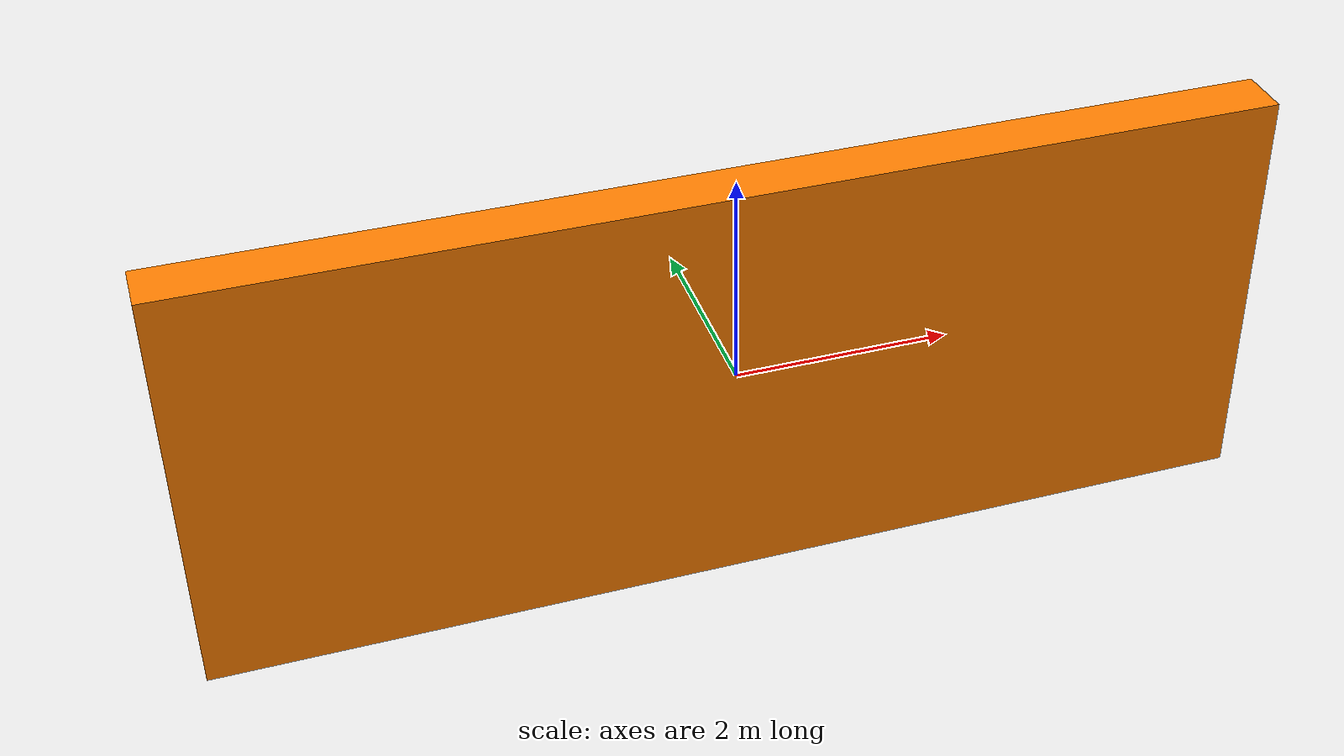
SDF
<?xml version='1.0'?>
<sdf version='1.7'>
  <model name='room_wall'>
    <!-- disable dynamics -->
    <static>true</static>
    <allow_auto_disable>1</allow_auto_disable>

    <!-- create physical object -->
    <link name='wall'>
      <!-- any physical properties or relations, no inertial as it should be immovable -->
      <gravity>1</gravity>
      <enable_wind>0</enable_wind>
      <self_collide>0</self_collide>
      <kinematic>0</kinematic>
      <pose>0 0 0 0 -0 0</pose>

      <!-- collision box definition -->
      <collision name='collision'>
        <laser_retro>0</laser_retro>
        <max_contacts>10</max_contacts>
        <pose>0 0 0 0 -0 0</pose>
        <geometry>
          <box>
            <size>10 0.5 4</size>
          </box>
        </geometry>
        <surface>
          <!-- make it basically impossible to move after collision -->
          <friction>
            <ode>
              <mu>100</mu>
              <mu2>100</mu2>
            </ode>
            <torsional>
              <coefficient>100</coefficient>
            </torsional>
          </friction>
          <!-- no bounce (default values) -->
          <bounce>
            <restitution_coefficient>0</restitution_coefficient>
            <threshold>1e+06</threshold>
          </bounce>
          <!-- default contact values used -->
        </surface>
      </collision>

      <!-- visual definition of the wall -->
      <visual name='visual'>
        <cast_shadows>1</cast_shadows>
        <transparency>0</transparency>
        <pose>0 0 0 0 -0 0</pose>
        <material>
          <ambient>1 0.5 0 1</ambient>
          <diffuse>1 0.5 0 1</diffuse>
          <specular>1 1 1 0.5</specular>
          <emissive>0 0 0 1</emissive>
        </material>
        <geometry>
          <box>
            <size>10 0.5 4</size>
          </box>
        </geometry>
      </visual>

    </link>
  </model>
</sdf>
